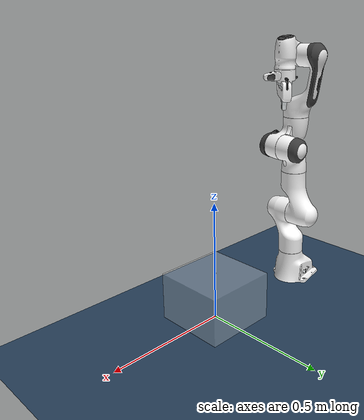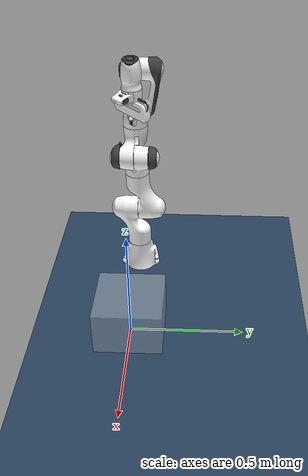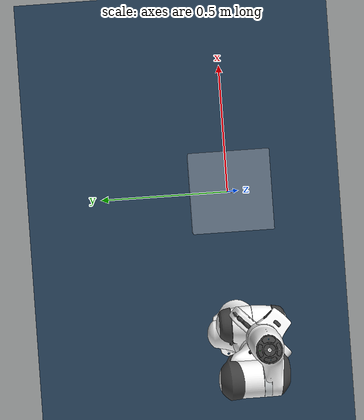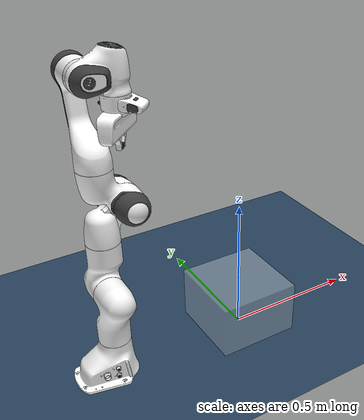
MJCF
<?xml version='1.0' encoding='utf-8'?>
<mujoco model="panda scene">
  <include file="/home/cudagl/disf_ras/assets/panda/panda.xml" />
  <include file="/home/cudagl/disf_ras/models/box_mesh/box_composite5_large_left/textured/textured.xml" />
  <statistic center="0.3 0 0.4" extent="1" />
  <visual>
    <headlight diffuse="0.6 0.6 0.6" ambient="0.3 0.3 0.3" specular="0 0 0" />
    <rgba haze="0.15 0.25 0.35 1" />
    <global azimuth="120" elevation="-20" offwidth="1920" offheight="1080" />
    </visual>
  <asset>
    <texture type="skybox" builtin="gradient" rgb1="0.3 0.5 0.7" rgb2="0 0 0" width="512" height="3072" />
    <texture type="2d" name="groundplane" builtin="checker" mark="edge" rgb1="0.2 0.3 0.4" rgb2="0.1 0.2 0.3" markrgb="0.8 0.8 0.8" width="300" height="300" />
    <material name="groundplane" texture="groundplane" texuniform="true" texrepeat="5 5" reflectance="0.2" />
    </asset>
  <worldbody>
    <light pos="0 0 1.5" dir="0 0 -1" directional="true" />
    <body name="floor">
      <geom name="floor" size="0 0 0.05" type="plane" material="groundplane" />
      </body>
    <body name="table" pos="0 0 0.1">
      <geom name="table" size="0.15 0.15 0.1" type="box" rgba="1 1 1 0.3" friction="10 0.005 0.0001" />
      </body>
    <site name="canonical_fingertip_origin" pos="0 0 0.2" rgba="1 0 1 0.3" quat="0 1 0 0" />
    </worldbody>
  <contact>
    <exclude body1="floor" body2="table" />
    <exclude body1="floor" body2="link6" />
    <exclude body1="floor" body2="link7" />
    <exclude body1="floor" body2="hand" />
    <exclude body1="floor" body2="canonical_fingertip_surafece" />
    <exclude body1="floor" body2="left_finger" />
    <exclude body1="floor" body2="right_finger" />
    <exclude body1="table" body2="link6" />
    <exclude body1="table" body2="link7" />
    <exclude body1="table" body2="hand" />
    <exclude body1="table" body2="canonical_fingertip_surafece" />
    <exclude body1="table" body2="left_finger" />
    <exclude body1="table" body2="right_finger" />
    <exclude body1="floor" body2="link0" />
    <exclude body1="floor" body2="link1" />
    <exclude body1="floor" body2="link2" />
    <exclude body1="floor" body2="link3" />
    <exclude body1="floor" body2="link4" />
    <exclude body1="floor" body2="link5" />
    <exclude body1="floor" body2="link6" />
    <exclude body1="floor" body2="link7" />
    <exclude body1="floor" body2="hand" />
    <exclude body1="floor" body2="canonical_fingertip_surafece" />
    <exclude body1="floor" body2="left_finger" />
    <exclude body1="floor" body2="right_finger" />
    <exclude body1="table" body2="link0" />
    <exclude body1="table" body2="link1" />
    <exclude body1="table" body2="link2" />
    <exclude body1="table" body2="link3" />
    <exclude body1="table" body2="link4" />
    <exclude body1="table" body2="link5" />
    <exclude body1="table" body2="link6" />
    <exclude body1="table" body2="link7" />
    <exclude body1="table" body2="hand" />
    <exclude body1="table" body2="canonical_fingertip_surafece" />
    <exclude body1="table" body2="left_finger" />
    <exclude body1="table" body2="right_finger" />
    </contact>
  </mujoco>

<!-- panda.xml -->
<mujoco model="panda">
  <compiler angle="radian" meshdir="assets" autolimits="true"/>

  <option integrator="implicitfast" noslip_iterations="0" cone="elliptic" impratio="4" timestep="1e-5">
  </option>

  <default>
    <default class="panda">
      <material specular="0.5" shininess="0.25"/>
      <joint armature="0.1" damping="1" axis="0 0 1" range="-2.8973 2.8973"/>
      <general dyntype="none" biastype="affine" ctrlrange="-2.8973 2.8973" forcerange="-87 87"/>
      <default class="finger">
        <joint axis="0 1 0" type="slide" range="0 0.04"/>
      </default>

      <default class="object_collision">
        <geom type="mesh" group="4" condim="6" friction="10 5e-1 1e-4"/>
      </default>

      <default class="visual">
        <geom type="mesh" contype="0" conaffinity="0" group="2"/>
      </default>

      <default class="collision">
        <geom type="mesh" group="3" condim="6" friction="10 5e-1 1e-4"/>

        <default class="fingertip_pad_collision_1">
          <geom type="box" size="0.0085 0.004 0.0085" pos="0 0.0055 0.0445" group="5"/>
        </default>
        <default class="fingertip_pad_collision_2">
          <geom type="box" size="0.003 0.002 0.003" pos="0.0055 0.002 0.05"/>
        </default>
        <default class="fingertip_pad_collision_3">
          <geom type="box" size="0.003 0.002 0.003" pos="-0.0055 0.002 0.05"/>
        </default>
        <default class="fingertip_pad_collision_4">
          <geom type="box" size="0.003 0.002 0.0035" pos="0.0055 0.002 0.0395"/>
        </default>
        <default class="fingertip_pad_collision_5">
          <geom type="box" size="0.003 0.002 0.0035" pos="-0.0055 0.002 0.0395"/>
        </default>
      </default>

      <default class="canonical_fingertip_surafece_site">
        <site type="box" size="0.0085 0.004 0.0085" pos="0 0 0.0445" rgba="1 1 0 0.5"/>
      </default>

    </default>
  </default>

  <asset>
    <material class="panda" name="white" rgba="1 1 1 1"/>
    <material class="panda" name="off_white" rgba="0.901961 0.921569 0.929412 1"/>
    <material class="panda" name="black" rgba="0.25 0.25 0.25 1"/>
    <material class="panda" name="green" rgba="0 1 0 1"/>
    <material class="panda" name="light_blue" rgba="0.039216 0.541176 0.780392 1"/>

    <!-- Collision meshes -->
    <mesh name="link0_c" file="link0.stl"/>
    <mesh name="link1_c" file="link1.stl"/>
    <mesh name="link2_c" file="link2.stl"/>
    <mesh name="link3_c" file="link3.stl"/>
    <mesh name="link4_c" file="link4.stl"/>
    <mesh name="link5_c0" file="link5_collision_0.obj"/>
    <mesh name="link5_c1" file="link5_collision_1.obj"/>
    <mesh name="link5_c2" file="link5_collision_2.obj"/>
    <mesh name="link6_c" file="link6.stl"/>
    <mesh name="link7_c" file="link7.stl"/>
    <mesh name="hand_c" file="hand.stl"/>

    <!-- Visual meshes -->
    <mesh file="link0_0.obj"/>
    <mesh file="link0_1.obj"/>
    <mesh file="link0_2.obj"/>
    <mesh file="link0_3.obj"/>
    <mesh file="link0_4.obj"/>
    <mesh file="link0_5.obj"/>
    <mesh file="link0_7.obj"/>
    <mesh file="link0_8.obj"/>
    <mesh file="link0_9.obj"/>
    <mesh file="link0_10.obj"/>
    <mesh file="link0_11.obj"/>
    <mesh file="link1.obj"/>
    <mesh file="link2.obj"/>
    <mesh file="link3_0.obj"/>
    <mesh file="link3_1.obj"/>
    <mesh file="link3_2.obj"/>
    <mesh file="link3_3.obj"/>
    <mesh file="link4_0.obj"/>
    <mesh file="link4_1.obj"/>
    <mesh file="link4_2.obj"/>
    <mesh file="link4_3.obj"/>
    <mesh file="link5_0.obj"/>
    <mesh file="link5_1.obj"/>
    <mesh file="link5_2.obj"/>
    <mesh file="link6_0.obj"/>
    <mesh file="link6_1.obj"/>
    <mesh file="link6_2.obj"/>
    <mesh file="link6_3.obj"/>
    <mesh file="link6_4.obj"/>
    <mesh file="link6_5.obj"/>
    <mesh file="link6_6.obj"/>
    <mesh file="link6_7.obj"/>
    <mesh file="link6_8.obj"/>
    <mesh file="link6_9.obj"/>
    <mesh file="link6_10.obj"/>
    <mesh file="link6_11.obj"/>
    <mesh file="link6_12.obj"/>
    <mesh file="link6_13.obj"/>
    <mesh file="link6_14.obj"/>
    <mesh file="link6_15.obj"/>
    <mesh file="link6_16.obj"/>
    <mesh file="link7_0.obj"/>
    <mesh file="link7_1.obj"/>
    <mesh file="link7_2.obj"/>
    <mesh file="link7_3.obj"/>
    <mesh file="link7_4.obj"/>
    <mesh file="link7_5.obj"/>
    <mesh file="link7_6.obj"/>
    <mesh file="link7_7.obj"/>
    <mesh file="hand_0.obj"/>
    <mesh file="hand_1.obj"/>
    <mesh file="hand_2.obj"/>
    <mesh file="hand_3.obj"/>
    <mesh file="hand_4.obj"/>
    <mesh file="finger_0.obj"/>
    <mesh file="finger_1.obj"/>
  </asset>

  <worldbody>
    <light name="top" pos="0 0 2" mode="trackcom"/>

    <body name="link0" childclass="panda" pos="-0.5 0 0">
      <inertial mass="0.629769" pos="-0.041018 -0.00014 0.049974"
        fullinertia="0.00315 0.00388 0.004285 8.2904e-7 0.00015 8.2299e-6"/>
      <geom mesh="link0_0" material="off_white" class="visual"/>
      <geom mesh="link0_1" material="black" class="visual"/>
      <geom mesh="link0_2" material="off_white" class="visual"/>
      <geom mesh="link0_3" material="black" class="visual"/>
      <geom mesh="link0_4" material="off_white" class="visual"/>
      <geom mesh="link0_5" material="black" class="visual"/>
      <geom mesh="link0_7" material="white" class="visual"/>
      <geom mesh="link0_8" material="white" class="visual"/>
      <geom mesh="link0_9" material="black" class="visual"/>
      <geom mesh="link0_10" material="off_white" class="visual"/>
      <geom mesh="link0_11" material="white" class="visual"/>
      <geom mesh="link0_c" class="collision"/>
      <body name="link1" pos="0 0 0.333">
        <inertial mass="4.970684" pos="0.003875 0.002081 -0.04762"
          fullinertia="0.70337 0.70661 0.0091170 -0.00013900 0.0067720 0.019169"/>
        <joint name="joint1"/>
        <geom material="white" mesh="link1" class="visual"/>
        <geom mesh="link1_c" class="collision"/>
        <body name="link2" quat="1 -1 0 0">
          <inertial mass="0.646926" pos="-0.003141 -0.02872 0.003495"
            fullinertia="0.0079620 2.8110e-2 2.5995e-2 -3.925e-3 1.0254e-2 7.04e-4"/>
          <joint name="joint2" range="-1.7628 1.7628"/>
          <geom material="white" mesh="link2" class="visual"/>
          <geom mesh="link2_c" class="collision"/>
          <body name="link3" pos="0 -0.316 0" quat="1 1 0 0">
            <joint name="joint3"/>
            <inertial mass="3.228604" pos="2.7518e-2 3.9252e-2 -6.6502e-2"
              fullinertia="3.7242e-2 3.6155e-2 1.083e-2 -4.761e-3 -1.1396e-2 -1.2805e-2"/>
            <geom mesh="link3_0" material="white" class="visual"/>
            <geom mesh="link3_1" material="white" class="visual"/>
            <geom mesh="link3_2" material="white" class="visual"/>
            <geom mesh="link3_3" material="black" class="visual"/>
            <geom mesh="link3_c" class="collision"/>
            <body name="link4" pos="0.0825 0 0" quat="1 1 0 0">
              <inertial mass="3.587895" pos="-5.317e-2 1.04419e-1 2.7454e-2"
                fullinertia="2.5853e-2 1.9552e-2 2.8323e-2 7.796e-3 -1.332e-3 8.641e-3"/>
              <joint name="joint4" range="-3.0718 -0.0698"/>
              <geom mesh="link4_0" material="white" class="visual"/>
              <geom mesh="link4_1" material="white" class="visual"/>
              <geom mesh="link4_2" material="black" class="visual"/>
              <geom mesh="link4_3" material="white" class="visual"/>
              <geom mesh="link4_c" class="collision"/>
              <body name="link5" pos="-0.0825 0.384 0" quat="1 -1 0 0">
                <inertial mass="1.225946" pos="-1.1953e-2 4.1065e-2 -3.8437e-2"
                  fullinertia="3.5549e-2 2.9474e-2 8.627e-3 -2.117e-3 -4.037e-3 2.29e-4"/>
                <joint name="joint5"/>
                <geom mesh="link5_0" material="black" class="visual"/>
                <geom mesh="link5_1" material="white" class="visual"/>
                <geom mesh="link5_2" material="white" class="visual"/>
                <geom mesh="link5_c0" class="collision"/>
                <geom mesh="link5_c1" class="collision"/>
                <geom mesh="link5_c2" class="collision"/>
                <body name="link6" quat="1 1 0 0">
                  <inertial mass="1.666555" pos="6.0149e-2 -1.4117e-2 -1.0517e-2"
                    fullinertia="1.964e-3 4.354e-3 5.433e-3 1.09e-4 -1.158e-3 3.41e-4"/>
                  <joint name="joint6" range="-0.0175 3.7525"/>
                  <geom mesh="link6_0" material="off_white" class="visual"/>
                  <geom mesh="link6_1" material="white" class="visual"/>
                  <geom mesh="link6_2" material="black" class="visual"/>
                  <geom mesh="link6_3" material="white" class="visual"/>
                  <geom mesh="link6_4" material="white" class="visual"/>
                  <geom mesh="link6_5" material="white" class="visual"/>
                  <geom mesh="link6_6" material="white" class="visual"/>
                  <geom mesh="link6_7" material="light_blue" class="visual"/>
                  <geom mesh="link6_8" material="light_blue" class="visual"/>
                  <geom mesh="link6_9" material="black" class="visual"/>
                  <geom mesh="link6_10" material="black" class="visual"/>
                  <geom mesh="link6_11" material="white" class="visual"/>
                  <geom mesh="link6_12" material="green" class="visual"/>
                  <geom mesh="link6_13" material="white" class="visual"/>
                  <geom mesh="link6_14" material="black" class="visual"/>
                  <geom mesh="link6_15" material="black" class="visual"/>
                  <geom mesh="link6_16" material="white" class="visual"/>
                  <geom mesh="link6_c" class="collision"/>
                  <body name="link7" pos="0.088 0 0" quat="1 1 0 0">
                    <inertial mass="7.35522e-01" pos="1.0517e-2 -4.252e-3 6.1597e-2"
                      fullinertia="1.2516e-2 1.0027e-2 4.815e-3 -4.28e-4 -1.196e-3 -7.41e-4"/>
                    <joint name="joint7"/>
                    <geom mesh="link7_0" material="white" class="visual"/>
                    <geom mesh="link7_1" material="black" class="visual"/>
                    <geom mesh="link7_2" material="black" class="visual"/>
                    <geom mesh="link7_3" material="black" class="visual"/>
                    <geom mesh="link7_4" material="black" class="visual"/>
                    <geom mesh="link7_5" material="black" class="visual"/>
                    <geom mesh="link7_6" material="black" class="visual"/>
                    <geom mesh="link7_7" material="white" class="visual"/>
                    <geom mesh="link7_c" class="collision"/>

                    <body name="hand" pos="0 0 0.107" quat="0.92387953 0. 0. 0.38268343">
                      <inertial mass="0.73" pos="-0.01 0 0.03" diaginertia="0.001 0.0025 0.0017"/>
                      <geom mesh="hand_0" material="off_white" class="visual"/>
                      <geom mesh="hand_1" material="black" class="visual"/>
                      <geom mesh="hand_2" material="black" class="visual"/>
                      <geom mesh="hand_3" material="white" class="visual"/>
                      <geom mesh="hand_4" material="off_white" class="visual"/>
                      <geom mesh="hand_c" class="collision"/>

                      <body name="canonical_fingertip_surafece" pos="0 0 0.0584">
                        <site class="canonical_fingertip_surafece_site" name="canonical_fingertip_surafece"/>
                      </body>

                      <body name="left_finger" pos="0 0 0.0584">
                        <inertial mass="0.015" pos="0 0 0" diaginertia="2.375e-6 2.375e-6 7.5e-7"/>
                        <joint name="finger_joint1" class="finger"/>
                        <geom mesh="finger_0" material="off_white" class="visual"/>
                        <geom mesh="finger_1" material="black" class="visual"/>
                        <geom mesh="finger_0" class="collision"/>
                        <geom class="fingertip_pad_collision_1"/>
                        <geom rgba="0 1 0 1" class="fingertip_pad_collision_1" name="left_fingertip_center"/>
                        <geom class="fingertip_pad_collision_2"/>
                        <geom class="fingertip_pad_collision_3"/>
                        <geom class="fingertip_pad_collision_4"/>
                        <geom class="fingertip_pad_collision_5"/>
                      </body>
                      <body name="right_finger" pos="0 0 0.0584" quat="0 0 0 1">
                        <inertial mass="0.015" pos="0 0 0" diaginertia="2.375e-6 2.375e-6 7.5e-7"/>
                        <joint name="finger_joint2" class="finger"/>
                        <geom mesh="finger_0" material="off_white" class="visual"/>
                        <geom mesh="finger_1" material="black" class="visual"/>
                        <geom mesh="finger_0" class="collision"/>
                        <geom class="fingertip_pad_collision_1"/>
                        <geom rgba="1 0 0 1" class="fingertip_pad_collision_1" name="right_fingertip_center"/>
                        <geom class="fingertip_pad_collision_2"/>
                        <geom class="fingertip_pad_collision_3"/>
                        <geom class="fingertip_pad_collision_4"/>
                        <geom class="fingertip_pad_collision_5"/>
                      </body>
                    </body>
                  </body>
                </body>
              </body>
            </body>
          </body>
        </body>
      </body>
    </body>
  </worldbody>

  <tendon>
    <fixed name="split">
      <joint joint="finger_joint1" coef="0.5"/>
      <joint joint="finger_joint2" coef="0.5"/>
    </fixed>
  </tendon>

  <equality>
    <joint joint1="finger_joint1" joint2="finger_joint2" solimp="0.95 0.99 0.001" solref="0.005 1"/>
  </equality>

  <actuator>
    <general class="panda" name="actuator1" joint="joint1" gainprm="4500" biasprm="0 -4500 -450"/>
    <general class="panda" name="actuator2" joint="joint2" gainprm="4500" biasprm="0 -4500 -450"
      ctrlrange="-1.7628 1.7628"/>
    <general class="panda" name="actuator3" joint="joint3" gainprm="3500" biasprm="0 -3500 -350"/>
    <general class="panda" name="actuator4" joint="joint4" gainprm="3500" biasprm="0 -3500 -350"
      ctrlrange="-3.0718 -0.0698"/>
    <general class="panda" name="actuator5" joint="joint5" gainprm="2000" biasprm="0 -2000 -200" forcerange="-12 12"/>
    <general class="panda" name="actuator6" joint="joint6" gainprm="2000" biasprm="0 -2000 -200" forcerange="-12 12"
      ctrlrange="-0.0175 3.7525"/>
    <general class="panda" name="actuator7" joint="joint7" gainprm="2000" biasprm="0 -2000 -200" forcerange="-12 12"/>
    <!-- Remap original ctrlrange (0, 0.04) to (0, 255): 0.04 * 100 / 255 = 0.01568627451 -->
    <general class="panda" name="actuator_finger" tendon="split" forcerange="-100 100" ctrlrange="0 0.04"
      gainprm="100 0 0" biasprm="0 -100 -10"/>
  </actuator>

  <keyframe>
    <key name="home" qpos="0 0 0 -1.57079 0 1.57079 -0.7853       0.04 0.04       0 0 0.196   1 0 0 0" ctrl="0 0 0 -1.57079 0 1.57079 -0.7853 0.04" />
  </keyframe>
</mujoco>

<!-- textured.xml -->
<mujoco model="textured">
  <worldbody>
    <body name="textured">
      <freejoint/>
      <geom name="slice_0" type="box" pos="-0.080000 0 0" size="0.020000 0.020000 0.020000" mass="0.466380" rgba="1.000000 0.000000 0.000000 1.000000" class="object_collision"/>
      <geom name="slice_1" type="box" pos="-0.040000 0 0" size="0.020000 0.020000 0.020000" mass="0.104063" rgba="1.000000 0.500000 0.000000 1.000000" class="object_collision"/>
      <geom name="slice_2" type="box" pos="0.000000 0 0" size="0.020000 0.020000 0.020000" mass="0.023220" rgba="1.000000 1.000000 0.000000 1.000000" class="object_collision"/>
      <geom name="slice_3" type="box" pos="0.040000 0 0" size="0.020000 0.020000 0.020000" mass="0.005181" rgba="0.000000 0.800000 0.000000 1.000000" class="object_collision"/>
      <geom name="slice_4" type="box" pos="0.080000 0 0" size="0.020000 0.020000 0.020000" mass="0.001156" rgba="0.000000 0.200000 1.000000 1.000000" class="object_collision"/>
    </body>
  </worldbody>
</mujoco>
